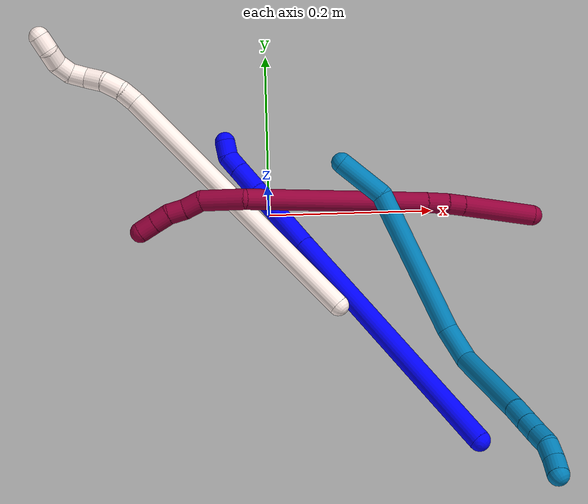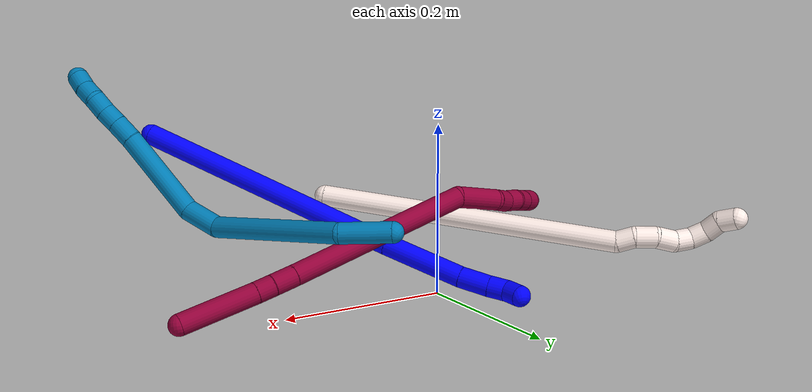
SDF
<sdf version="1.7">
 <world name="default">
  <model name="bin">
   <static>1</static>
   <link name="bottom">
    <collision name="collision-bottom">
     <pose>0 0 -0.01 0 -0 0</pose>
     <geometry><box><size>0.8 0.6 0.02</size></box></geometry>
     <surface>
      <friction><ode><mu>100</mu><mu2>100</mu2></ode></friction>
      <contact><collide_bitmask>65535</collide_bitmask></contact>
     </surface>
    </collision>
   </link>
   <link name="west_wall">
    <collision name="collision-west_wall">
     <pose>-0.41 0 0.1 0 -0 0</pose>
     <geometry><box><size>0.02 0.6 0.2</size></box></geometry>
     <surface>
      <friction><ode><mu>100</mu><mu2>100</mu2></ode></friction>
      <contact><collide_bitmask>65535</collide_bitmask></contact>
     </surface>
    </collision>
   </link>
   <link name="east_wall">
    <collision name="collision-east_wall">
     <pose>0.41 0 0.1 0 -0 0</pose>
     <geometry><box><size>0.02 0.6 0.2</size></box></geometry>
     <surface>
      <friction><ode><mu>100</mu><mu2>100</mu2></ode></friction>
      <contact><collide_bitmask>65535</collide_bitmask></contact>
     </surface>
    </collision>
   </link>
   <link name="south_wall">
    <collision name="collision-south_wall">
     <pose>0 -0.31 0.1 0 -0 0</pose>
     <geometry><box><size>0.8 0.02 0.2</size></box></geometry>
     <surface>
      <friction><ode><mu>100</mu><mu2>100</mu2></ode></friction>
      <contact><collide_bitmask>65535</collide_bitmask></contact>
     </surface>
    </collision>
   </link>
   <link name="north_wall">
    <collision name="collision-north_wall">
     <pose>0 0.31 0.1 0 -0 0</pose>
     <geometry><box><size>0.8 0.02 0.2</size></box></geometry>
     <surface>
      <friction><ode><mu>100</mu><mu2>100</mu2></ode></friction>
      <contact><collide_bitmask>65535</collide_bitmask></contact>
     </surface>
    </collision>
   </link>
  </model>
  <model name="1">
   <static>0</static>
   <link name="1">
    <collision name="collision-cylinder-e_1_1_4">
     <pose>-0.069085 0.102384 -0.106049 -2.37377 -0.438271 1.00773</pose>
     <geometry><cylinder><radius>0.0125</radius><length>0.325587</length></cylinder></geometry>
     <surface>
      <friction><ode><mu>1.16</mu><mu2>1.16</mu2><slip1>0</slip1><slip2>0</slip2></ode></friction>
      <contact><ode><kp>1e+06</kp><kd>1</kd><max_vel>0</max_vel><min_depth>0.001</min_depth></ode></contact>
     </surface>
    </collision>
    <visual name="visual-cylinder-e_1_1_4">
     <pose>-0.069085 0.102384 -0.106049 -2.37377 -0.438271 1.00773</pose>
     <geometry><cylinder><radius>0.0125</radius><length>0.325587</length></cylinder></geometry>
     <material><ambient>0 0 1 1</ambient></material>
    </visual>
    <collision name="collision-cylinder-e_2_4_5">
     <pose>-0.157793 0.236407 -0.243176 -2.34729 -0.416544 0.933452</pose>
     <geometry><cylinder><radius>0.0125</radius><length>0.096993</length></cylinder></geometry>
     <surface>
      <friction><ode><mu>1.16</mu><mu2>1.16</mu2><slip1>0</slip1><slip2>0</slip2></ode></friction>
      <contact><ode><kp>1e+06</kp><kd>1</kd><max_vel>0</max_vel><min_depth>0.001</min_depth></ode></contact>
     </surface>
    </collision>
    <visual name="visual-cylinder-e_2_4_5">
     <pose>-0.157793 0.236407 -0.243176 -2.34729 -0.416544 0.933452</pose>
     <geometry><cylinder><radius>0.0125</radius><length>0.096993</length></cylinder></geometry>
     <material><ambient>0 0 1 1</ambient></material>
    </visual>
    <collision name="collision-cylinder-e_3_5_6">
     <pose>-0.184173 0.280966 -0.284482 -2.24031 -0.389235 0.773714</pose>
     <geometry><cylinder><radius>0.0125</radius><length>0.035621</length></cylinder></geometry>
     <surface>
      <friction><ode><mu>1.16</mu><mu2>1.16</mu2><slip1>0</slip1><slip2>0</slip2></ode></friction>
      <contact><ode><kp>1e+06</kp><kd>1</kd><max_vel>0</max_vel><min_depth>0.001</min_depth></ode></contact>
     </surface>
    </collision>
    <visual name="visual-cylinder-e_3_5_6">
     <pose>-0.184173 0.280966 -0.284482 -2.24031 -0.389235 0.773714</pose>
     <geometry><cylinder><radius>0.0125</radius><length>0.035621</length></cylinder></geometry>
     <material><ambient>0 0 1 1</ambient></material>
    </visual>
    <collision name="collision-cylinder-e_4_6_7">
     <pose>-0.194814 0.302154 -0.300499 -2.18177 -0.367187 0.685339</pose>
     <geometry><cylinder><radius>0.0125</radius><length>0.021628</length></cylinder></geometry>
     <surface>
      <friction><ode><mu>1.16</mu><mu2>1.16</mu2><slip1>0</slip1><slip2>0</slip2></ode></friction>
      <contact><ode><kp>1e+06</kp><kd>1</kd><max_vel>0</max_vel><min_depth>0.001</min_depth></ode></contact>
     </surface>
    </collision>
    <visual name="visual-cylinder-e_4_6_7">
     <pose>-0.194814 0.302154 -0.300499 -2.18177 -0.367187 0.685339</pose>
     <geometry><cylinder><radius>0.0125</radius><length>0.021628</length></cylinder></geometry>
     <material><ambient>0 0 1 1</ambient></material>
    </visual>
    <collision name="collision-cylinder-e_5_7_2">
     <pose>-0.197733 0.317568 -0.31334 -2.34949 0.095664 -0.227964</pose>
     <geometry><cylinder><radius>0.0125</radius><length>0.020171</length></cylinder></geometry>
     <surface>
      <friction><ode><mu>1.16</mu><mu2>1.16</mu2><slip1>0</slip1><slip2>0</slip2></ode></friction>
      <contact><ode><kp>1e+06</kp><kd>1</kd><max_vel>0</max_vel><min_depth>0.001</min_depth></ode></contact>
     </surface>
    </collision>
    <visual name="visual-cylinder-e_5_7_2">
     <pose>-0.197733 0.317568 -0.31334 -2.34949 0.095664 -0.227964</pose>
     <geometry><cylinder><radius>0.0125</radius><length>0.020171</length></cylinder></geometry>
     <material><ambient>0 0 1 1</ambient></material>
    </visual>
    <collision name="collision-sphere-2">
     <pose>-0.196769 0.324714 -0.320392 0 -0 0</pose>
     <geometry><sphere><radius>0.0125</radius></sphere></geometry>
     <surface>
      <friction><ode><mu>1.16</mu><mu2>1.16</mu2><slip1>0</slip1><slip2>0</slip2></ode></friction>
      <contact><ode><kp>1e+06</kp><kd>1</kd><max_vel>0</max_vel><min_depth>0.001</min_depth></ode></contact>
     </surface>
    </collision>
    <visual name="visual-sphere-2">
     <pose>-0.196769 0.324714 -0.320392 0 -0 0</pose>
     <geometry><sphere><radius>0.0125</radius></sphere></geometry>
     <material><ambient>0 0 1 1</ambient></material>
    </visual>
    <collision name="collision-sphere-7">
     <pose>-0.198696 0.310421 -0.306289 0 -0 0</pose>
     <geometry><sphere><radius>0.0125</radius></sphere></geometry>
     <surface>
      <friction><ode><mu>1.16</mu><mu2>1.16</mu2><slip1>0</slip1><slip2>0</slip2></ode></friction>
      <contact><ode><kp>1e+06</kp><kd>1</kd><max_vel>0</max_vel><min_depth>0.001</min_depth></ode></contact>
     </surface>
    </collision>
    <visual name="visual-sphere-7">
     <pose>-0.198696 0.310421 -0.306289 0 -0 0</pose>
     <geometry><sphere><radius>0.0125</radius></sphere></geometry>
     <material><ambient>0 0 1 1</ambient></material>
    </visual>
    <collision name="collision-sphere-6">
     <pose>-0.190932 0.293887 -0.294709 0 -0 0</pose>
     <geometry><sphere><radius>0.0125</radius></sphere></geometry>
     <surface>
      <friction><ode><mu>1.16</mu><mu2>1.16</mu2><slip1>0</slip1><slip2>0</slip2></ode></friction>
      <contact><ode><kp>1e+06</kp><kd>1</kd><max_vel>0</max_vel><min_depth>0.001</min_depth></ode></contact>
     </surface>
    </collision>
    <visual name="visual-sphere-6">
     <pose>-0.190932 0.293887 -0.294709 0 -0 0</pose>
     <geometry><sphere><radius>0.0125</radius></sphere></geometry>
     <material><ambient>0 0 1 1</ambient></material>
    </visual>
    <collision name="collision-sphere-5">
     <pose>-0.177414 0.268045 -0.274256 0 -0 0</pose>
     <geometry><sphere><radius>0.0125</radius></sphere></geometry>
     <surface>
      <friction><ode><mu>1.16</mu><mu2>1.16</mu2><slip1>0</slip1><slip2>0</slip2></ode></friction>
      <contact><ode><kp>1e+06</kp><kd>1</kd><max_vel>0</max_vel><min_depth>0.001</min_depth></ode></contact>
     </surface>
    </collision>
    <visual name="visual-sphere-5">
     <pose>-0.177414 0.268045 -0.274256 0 -0 0</pose>
     <geometry><sphere><radius>0.0125</radius></sphere></geometry>
     <material><ambient>0 0 1 1</ambient></material>
    </visual>
    <collision name="collision-sphere-1">
     <geometry><sphere><radius>0.0125</radius></sphere></geometry>
     <surface>
      <friction><ode><mu>1.16</mu><mu2>1.16</mu2><slip1>0</slip1><slip2>0</slip2></ode></friction>
      <contact><ode><kp>1e+06</kp><kd>1</kd><max_vel>0</max_vel><min_depth>0.001</min_depth></ode></contact>
     </surface>
    </collision>
    <visual name="visual-sphere-1">
     <geometry><sphere><radius>0.0125</radius></sphere></geometry>
     <material><ambient>0 0 1 1</ambient></material>
    </visual>
    <collision name="collision-sphere-4">
     <pose>-0.138171 0.204769 -0.212097 0 -0 0</pose>
     <geometry><sphere><radius>0.0125</radius></sphere></geometry>
     <surface>
      <friction><ode><mu>1.16</mu><mu2>1.16</mu2><slip1>0</slip1><slip2>0</slip2></ode></friction>
      <contact><ode><kp>1e+06</kp><kd>1</kd><max_vel>0</max_vel><min_depth>0.001</min_depth></ode></contact>
     </surface>
    </collision>
    <visual name="visual-sphere-4">
     <pose>-0.138171 0.204769 -0.212097 0 -0 0</pose>
     <geometry><sphere><radius>0.0125</radius></sphere></geometry>
     <material><ambient>0 0 1 1</ambient></material>
    </visual>
    <inertial>
     <pose>-0.105121 0.158428 -0.162135 0 -0 0</pose>
     <mass>0.5</mass>
     <inertia>
      <ixx>0.003705</ixx>
      <ixy>0</ixy>
      <ixz>0</ixz>
      <iyy>0.001893</iyy>
      <iyz>0</iyz>
      <izz>-0.000639</izz>
     </inertia>
    </inertial>
   </link>
   <pose>0.228961 -0.288502 0.164075 0.627675 -0.486212 0.333135</pose>
  </model>
  <model name="8">
   <static>0</static>
   <link name="8">
    <collision name="collision-cylinder-e_1_1_4">
     <pose>-0.043607 -0.009297 -0.009969 2.39106 -1.26781 -2.15771</pose>
     <geometry><cylinder><radius>0.0125</radius><length>0.091375</length></cylinder></geometry>
     <surface>
      <friction><ode><mu>1.16</mu><mu2>1.16</mu2><slip1>0</slip1><slip2>0</slip2></ode></friction>
      <contact><ode><kp>1e+06</kp><kd>1</kd><max_vel>0</max_vel><min_depth>0.001</min_depth></ode></contact>
     </surface>
    </collision>
    <visual name="visual-cylinder-e_1_1_4">
     <pose>-0.043607 -0.009297 -0.009969 2.39106 -1.26781 -2.15771</pose>
     <geometry><cylinder><radius>0.0125</radius><length>0.091375</length></cylinder></geometry>
     <material><ambient>0.584314 0 0.227451 1</ambient></material>
    </visual>
    <collision name="collision-cylinder-e_2_4_5">
     <pose>-0.097062 -0.020546 -0.022447 2.48048 -1.25866 -2.26074</pose>
     <geometry><cylinder><radius>0.0125</radius><length>0.020698</length></cylinder></geometry>
     <surface>
      <friction><ode><mu>1.16</mu><mu2>1.16</mu2><slip1>0</slip1><slip2>0</slip2></ode></friction>
      <contact><ode><kp>1e+06</kp><kd>1</kd><max_vel>0</max_vel><min_depth>0.001</min_depth></ode></contact>
     </surface>
    </collision>
    <visual name="visual-cylinder-e_2_4_5">
     <pose>-0.097062 -0.020546 -0.022447 2.48048 -1.25866 -2.26074</pose>
     <geometry><cylinder><radius>0.0125</radius><length>0.020698</length></cylinder></geometry>
     <material><ambient>0.584314 0 0.227451 1</ambient></material>
    </visual>
    <collision name="collision-cylinder-e_3_5_6">
     <pose>-0.119941 -0.024111 -0.028128 2.671 -1.30415 -2.53309</pose>
     <geometry><cylinder><radius>0.0125</radius><length>0.027015</length></cylinder></geometry>
     <surface>
      <friction><ode><mu>1.16</mu><mu2>1.16</mu2><slip1>0</slip1><slip2>0</slip2></ode></friction>
      <contact><ode><kp>1e+06</kp><kd>1</kd><max_vel>0</max_vel><min_depth>0.001</min_depth></ode></contact>
     </surface>
    </collision>
    <visual name="visual-cylinder-e_3_5_6">
     <pose>-0.119941 -0.024111 -0.028128 2.671 -1.30415 -2.53309</pose>
     <geometry><cylinder><radius>0.0125</radius><length>0.027015</length></cylinder></geometry>
     <material><ambient>0.584314 0 0.227451 1</ambient></material>
    </visual>
    <collision name="collision-cylinder-e_4_6_7">
     <pose>-0.241595 -0.036149 -0.05955 2.78808 -1.30038 -2.68021</pose>
     <geometry><cylinder><radius>0.0125</radius><length>0.225442</length></cylinder></geometry>
     <surface>
      <friction><ode><mu>1.16</mu><mu2>1.16</mu2><slip1>0</slip1><slip2>0</slip2></ode></friction>
      <contact><ode><kp>1e+06</kp><kd>1</kd><max_vel>0</max_vel><min_depth>0.001</min_depth></ode></contact>
     </surface>
    </collision>
    <visual name="visual-cylinder-e_4_6_7">
     <pose>-0.241595 -0.036149 -0.05955 2.78808 -1.30038 -2.68021</pose>
     <geometry><cylinder><radius>0.0125</radius><length>0.225442</length></cylinder></geometry>
     <material><ambient>0.584314 0 0.227451 1</ambient></material>
    </visual>
    <collision name="collision-cylinder-e_5_7_8">
     <pose>-0.376093 -0.046797 -0.082447 0.041767 -1.36663 -0.034006</pose>
     <geometry><cylinder><radius>0.0125</radius><length>0.052844</length></cylinder></geometry>
     <surface>
      <friction><ode><mu>1.16</mu><mu2>1.16</mu2><slip1>0</slip1><slip2>0</slip2></ode></friction>
      <contact><ode><kp>1e+06</kp><kd>1</kd><max_vel>0</max_vel><min_depth>0.001</min_depth></ode></contact>
     </surface>
    </collision>
    <visual name="visual-cylinder-e_5_7_8">
     <pose>-0.376093 -0.046797 -0.082447 0.041767 -1.36663 -0.034006</pose>
     <geometry><cylinder><radius>0.0125</radius><length>0.052844</length></cylinder></geometry>
     <material><ambient>0.584314 0 0.227451 1</ambient></material>
    </visual>
    <collision name="collision-cylinder-e_6_8_9">
     <pose>-0.41182 -0.042466 -0.075205 -1.17762 -1.10675 0.782579</pose>
     <geometry><cylinder><radius>0.0125</radius><length>0.022037</length></cylinder></geometry>
     <surface>
      <friction><ode><mu>1.16</mu><mu2>1.16</mu2><slip1>0</slip1><slip2>0</slip2></ode></friction>
      <contact><ode><kp>1e+06</kp><kd>1</kd><max_vel>0</max_vel><min_depth>0.001</min_depth></ode></contact>
     </surface>
    </collision>
    <visual name="visual-cylinder-e_6_8_9">
     <pose>-0.41182 -0.042466 -0.075205 -1.17762 -1.10675 0.782579</pose>
     <geometry><cylinder><radius>0.0125</radius><length>0.022037</length></cylinder></geometry>
     <material><ambient>0.584314 0 0.227451 1</ambient></material>
    </visual>
    <collision name="collision-cylinder-e_7_9_10">
     <pose>-0.431414 -0.035466 -0.072653 -1.30607 -1.31641 1.06833</pose>
     <geometry><cylinder><radius>0.0125</radius><length>0.020129</length></cylinder></geometry>
     <surface>
      <friction><ode><mu>1.16</mu><mu2>1.16</mu2><slip1>0</slip1><slip2>0</slip2></ode></friction>
      <contact><ode><kp>1e+06</kp><kd>1</kd><max_vel>0</max_vel><min_depth>0.001</min_depth></ode></contact>
     </surface>
    </collision>
    <visual name="visual-cylinder-e_7_9_10">
     <pose>-0.431414 -0.035466 -0.072653 -1.30607 -1.31641 1.06833</pose>
     <geometry><cylinder><radius>0.0125</radius><length>0.020129</length></cylinder></geometry>
     <material><ambient>0.584314 0 0.227451 1</ambient></material>
    </visual>
    <collision name="collision-cylinder-e_8_10_11">
     <pose>-0.44992 -0.028153 -0.070629 -1.29812 -1.04766 0.826127</pose>
     <geometry><cylinder><radius>0.0125</radius><length>0.020237</length></cylinder></geometry>
     <surface>
      <friction><ode><mu>1.16</mu><mu2>1.16</mu2><slip1>0</slip1><slip2>0</slip2></ode></friction>
      <contact><ode><kp>1e+06</kp><kd>1</kd><max_vel>0</max_vel><min_depth>0.001</min_depth></ode></contact>
     </surface>
    </collision>
    <visual name="visual-cylinder-e_8_10_11">
     <pose>-0.44992 -0.028153 -0.070629 -1.29812 -1.04766 0.826127</pose>
     <geometry><cylinder><radius>0.0125</radius><length>0.020237</length></cylinder></geometry>
     <material><ambient>0.584314 0 0.227451 1</ambient></material>
    </visual>
    <collision name="collision-cylinder-e_9_11_2">
     <pose>-0.467439 -0.018299 -0.068398 -1.39806 -1.04659 0.903154</pose>
     <geometry><cylinder><radius>0.0125</radius><length>0.020223</length></cylinder></geometry>
     <surface>
      <friction><ode><mu>1.16</mu><mu2>1.16</mu2><slip1>0</slip1><slip2>0</slip2></ode></friction>
      <contact><ode><kp>1e+06</kp><kd>1</kd><max_vel>0</max_vel><min_depth>0.001</min_depth></ode></contact>
     </surface>
    </collision>
    <visual name="visual-cylinder-e_9_11_2">
     <pose>-0.467439 -0.018299 -0.068398 -1.39806 -1.04659 0.903154</pose>
     <geometry><cylinder><radius>0.0125</radius><length>0.020223</length></cylinder></geometry>
     <material><ambient>0.584314 0 0.227451 1</ambient></material>
    </visual>
    <collision name="collision-sphere-2">
     <pose>-0.476192 -0.013313 -0.067528 0 -0 0</pose>
     <geometry><sphere><radius>0.0125</radius></sphere></geometry>
     <surface>
      <friction><ode><mu>1.16</mu><mu2>1.16</mu2><slip1>0</slip1><slip2>0</slip2></ode></friction>
      <contact><ode><kp>1e+06</kp><kd>1</kd><max_vel>0</max_vel><min_depth>0.001</min_depth></ode></contact>
     </surface>
    </collision>
    <visual name="visual-sphere-2">
     <pose>-0.476192 -0.013313 -0.067528 0 -0 0</pose>
     <geometry><sphere><radius>0.0125</radius></sphere></geometry>
     <material><ambient>0.584314 0 0.227451 1</ambient></material>
    </visual>
    <collision name="collision-sphere-11">
     <pose>-0.458685 -0.023285 -0.069268 0 -0 0</pose>
     <geometry><sphere><radius>0.0125</radius></sphere></geometry>
     <surface>
      <friction><ode><mu>1.16</mu><mu2>1.16</mu2><slip1>0</slip1><slip2>0</slip2></ode></friction>
      <contact><ode><kp>1e+06</kp><kd>1</kd><max_vel>0</max_vel><min_depth>0.001</min_depth></ode></contact>
     </surface>
    </collision>
    <visual name="visual-sphere-11">
     <pose>-0.458685 -0.023285 -0.069268 0 -0 0</pose>
     <geometry><sphere><radius>0.0125</radius></sphere></geometry>
     <material><ambient>0.584314 0 0.227451 1</ambient></material>
    </visual>
    <collision name="collision-sphere-10">
     <pose>-0.441155 -0.033022 -0.07199 0 -0 0</pose>
     <geometry><sphere><radius>0.0125</radius></sphere></geometry>
     <surface>
      <friction><ode><mu>1.16</mu><mu2>1.16</mu2><slip1>0</slip1><slip2>0</slip2></ode></friction>
      <contact><ode><kp>1e+06</kp><kd>1</kd><max_vel>0</max_vel><min_depth>0.001</min_depth></ode></contact>
     </surface>
    </collision>
    <visual name="visual-sphere-10">
     <pose>-0.441155 -0.033022 -0.07199 0 -0 0</pose>
     <geometry><sphere><radius>0.0125</radius></sphere></geometry>
     <material><ambient>0.584314 0 0.227451 1</ambient></material>
    </visual>
    <collision name="collision-sphere-9">
     <pose>-0.421673 -0.037911 -0.073316 0 -0 0</pose>
     <geometry><sphere><radius>0.0125</radius></sphere></geometry>
     <surface>
      <friction><ode><mu>1.16</mu><mu2>1.16</mu2><slip1>0</slip1><slip2>0</slip2></ode></friction>
      <contact><ode><kp>1e+06</kp><kd>1</kd><max_vel>0</max_vel><min_depth>0.001</min_depth></ode></contact>
     </surface>
    </collision>
    <visual name="visual-sphere-9">
     <pose>-0.421673 -0.037911 -0.073316 0 -0 0</pose>
     <geometry><sphere><radius>0.0125</radius></sphere></geometry>
     <material><ambient>0.584314 0 0.227451 1</ambient></material>
    </visual>
    <collision name="collision-sphere-4">
     <pose>-0.087213 -0.018594 -0.019938 0 -0 0</pose>
     <geometry><sphere><radius>0.0125</radius></sphere></geometry>
     <surface>
      <friction><ode><mu>1.16</mu><mu2>1.16</mu2><slip1>0</slip1><slip2>0</slip2></ode></friction>
      <contact><ode><kp>1e+06</kp><kd>1</kd><max_vel>0</max_vel><min_depth>0.001</min_depth></ode></contact>
     </surface>
    </collision>
    <visual name="visual-sphere-4">
     <pose>-0.087213 -0.018594 -0.019938 0 -0 0</pose>
     <geometry><sphere><radius>0.0125</radius></sphere></geometry>
     <material><ambient>0.584314 0 0.227451 1</ambient></material>
    </visual>
    <collision name="collision-sphere-1">
     <geometry><sphere><radius>0.0125</radius></sphere></geometry>
     <surface>
      <friction><ode><mu>1.16</mu><mu2>1.16</mu2><slip1>0</slip1><slip2>0</slip2></ode></friction>
      <contact><ode><kp>1e+06</kp><kd>1</kd><max_vel>0</max_vel><min_depth>0.001</min_depth></ode></contact>
     </surface>
    </collision>
    <visual name="visual-sphere-1">
     <geometry><sphere><radius>0.0125</radius></sphere></geometry>
     <material><ambient>0.584314 0 0.227451 1</ambient></material>
    </visual>
    <collision name="collision-sphere-8">
     <pose>-0.401966 -0.047021 -0.077095 0 -0 0</pose>
     <geometry><sphere><radius>0.0125</radius></sphere></geometry>
     <surface>
      <friction><ode><mu>1.16</mu><mu2>1.16</mu2><slip1>0</slip1><slip2>0</slip2></ode></friction>
      <contact><ode><kp>1e+06</kp><kd>1</kd><max_vel>0</max_vel><min_depth>0.001</min_depth></ode></contact>
     </surface>
    </collision>
    <visual name="visual-sphere-8">
     <pose>-0.401966 -0.047021 -0.077095 0 -0 0</pose>
     <geometry><sphere><radius>0.0125</radius></sphere></geometry>
     <material><ambient>0.584314 0 0.227451 1</ambient></material>
    </visual>
    <collision name="collision-sphere-5">
     <pose>-0.106911 -0.022497 -0.024955 0 -0 0</pose>
     <geometry><sphere><radius>0.0125</radius></sphere></geometry>
     <surface>
      <friction><ode><mu>1.16</mu><mu2>1.16</mu2><slip1>0</slip1><slip2>0</slip2></ode></friction>
      <contact><ode><kp>1e+06</kp><kd>1</kd><max_vel>0</max_vel><min_depth>0.001</min_depth></ode></contact>
     </surface>
    </collision>
    <visual name="visual-sphere-5">
     <pose>-0.106911 -0.022497 -0.024955 0 -0 0</pose>
     <geometry><sphere><radius>0.0125</radius></sphere></geometry>
     <material><ambient>0.584314 0 0.227451 1</ambient></material>
    </visual>
    <collision name="collision-sphere-6">
     <pose>-0.132971 -0.025725 -0.0313 0 -0 0</pose>
     <geometry><sphere><radius>0.0125</radius></sphere></geometry>
     <surface>
      <friction><ode><mu>1.16</mu><mu2>1.16</mu2><slip1>0</slip1><slip2>0</slip2></ode></friction>
      <contact><ode><kp>1e+06</kp><kd>1</kd><max_vel>0</max_vel><min_depth>0.001</min_depth></ode></contact>
     </surface>
    </collision>
    <visual name="visual-sphere-6">
     <pose>-0.132971 -0.025725 -0.0313 0 -0 0</pose>
     <geometry><sphere><radius>0.0125</radius></sphere></geometry>
     <material><ambient>0.584314 0 0.227451 1</ambient></material>
    </visual>
    <collision name="collision-sphere-7">
     <pose>-0.35022 -0.046574 -0.0878 0 -0 0</pose>
     <geometry><sphere><radius>0.0125</radius></sphere></geometry>
     <surface>
      <friction><ode><mu>1.16</mu><mu2>1.16</mu2><slip1>0</slip1><slip2>0</slip2></ode></friction>
      <contact><ode><kp>1e+06</kp><kd>1</kd><max_vel>0</max_vel><min_depth>0.001</min_depth></ode></contact>
     </surface>
    </collision>
    <visual name="visual-sphere-7">
     <pose>-0.35022 -0.046574 -0.0878 0 -0 0</pose>
     <geometry><sphere><radius>0.0125</radius></sphere></geometry>
     <material><ambient>0.584314 0 0.227451 1</ambient></material>
    </visual>
    <inertial>
     <pose>-0.239782 -0.030276 -0.051699 0 -0 0</pose>
     <mass>0.5</mass>
     <inertia>
      <ixx>-0.000405</ixx>
      <ixy>0</ixy>
      <ixz>0</ixz>
      <iyy>0.000909</iyy>
      <iyz>0</iyz>
      <izz>0.001112</izz>
     </inertia>
    </inertial>
   </link>
   <pose>0.322599 -0.011225 0.012493 -2.90234 0.010213 0.033938</pose>
  </model>
  <model name="9">
   <static>0</static>
   <link name="9">
    <collision name="collision-cylinder-e_1_1_4">
     <pose>0.015047 -0.003715 0.026161 0.141061 0.517659 0.037406</pose>
     <geometry><cylinder><radius>0.0125</radius><length>0.060814</length></cylinder></geometry>
     <surface>
      <friction><ode><mu>1.16</mu><mu2>1.16</mu2><slip1>0</slip1><slip2>0</slip2></ode></friction>
      <contact><ode><kp>1e+06</kp><kd>1</kd><max_vel>0</max_vel><min_depth>0.001</min_depth></ode></contact>
     </surface>
    </collision>
    <visual name="visual-cylinder-e_1_1_4">
     <pose>0.015047 -0.003715 0.026161 0.141061 0.517659 0.037406</pose>
     <geometry><cylinder><radius>0.0125</radius><length>0.060814</length></cylinder></geometry>
     <material><ambient>0 0.490196 0.709804 1</ambient></material>
    </visual>
    <collision name="collision-cylinder-e_2_4_5">
     <pose>0.044713 -0.044356 0.131462 0.436564 0.165864 0.036872</pose>
     <geometry><cylinder><radius>0.0125</radius><length>0.177092</length></cylinder></geometry>
     <surface>
      <friction><ode><mu>1.16</mu><mu2>1.16</mu2><slip1>0</slip1><slip2>0</slip2></ode></friction>
      <contact><ode><kp>1e+06</kp><kd>1</kd><max_vel>0</max_vel><min_depth>0.001</min_depth></ode></contact>
     </surface>
    </collision>
    <visual name="visual-cylinder-e_2_4_5">
     <pose>0.044713 -0.044356 0.131462 0.436564 0.165864 0.036872</pose>
     <geometry><cylinder><radius>0.0125</radius><length>0.177092</length></cylinder></geometry>
     <material><ambient>0 0.490196 0.709804 1</ambient></material>
    </visual>
    <collision name="collision-cylinder-e_3_5_6">
     <pose>0.058628 -0.081796 0.233046 0.022897 -0.031375 -0.000359</pose>
     <geometry><cylinder><radius>0.0125</radius><length>0.044923</length></cylinder></geometry>
     <surface>
      <friction><ode><mu>1.16</mu><mu2>1.16</mu2><slip1>0</slip1><slip2>0</slip2></ode></friction>
      <contact><ode><kp>1e+06</kp><kd>1</kd><max_vel>0</max_vel><min_depth>0.001</min_depth></ode></contact>
     </surface>
    </collision>
    <visual name="visual-cylinder-e_3_5_6">
     <pose>0.058628 -0.081796 0.233046 0.022897 -0.031375 -0.000359</pose>
     <geometry><cylinder><radius>0.0125</radius><length>0.044923</length></cylinder></geometry>
     <material><ambient>0 0.490196 0.709804 1</ambient></material>
    </visual>
    <collision name="collision-cylinder-e_4_6_7">
     <pose>0.047389 -0.060222 0.304232 -0.425482 -0.194372 0.042113</pose>
     <geometry><cylinder><radius>0.0125</radius><length>0.10908</length></cylinder></geometry>
     <surface>
      <friction><ode><mu>1.16</mu><mu2>1.16</mu2><slip1>0</slip1><slip2>0</slip2></ode></friction>
      <contact><ode><kp>1e+06</kp><kd>1</kd><max_vel>0</max_vel><min_depth>0.001</min_depth></ode></contact>
     </surface>
    </collision>
    <visual name="visual-cylinder-e_4_6_7">
     <pose>0.047389 -0.060222 0.304232 -0.425482 -0.194372 0.042113</pose>
     <geometry><cylinder><radius>0.0125</radius><length>0.10908</length></cylinder></geometry>
     <material><ambient>0 0.490196 0.709804 1</ambient></material>
    </visual>
    <collision name="collision-cylinder-e_5_7_8">
     <pose>0.034766 -0.034002 0.36512 -0.327884 -0.161351 0.026748</pose>
     <geometry><cylinder><radius>0.0125</radius><length>0.025996</length></cylinder></geometry>
     <surface>
      <friction><ode><mu>1.16</mu><mu2>1.16</mu2><slip1>0</slip1><slip2>0</slip2></ode></friction>
      <contact><ode><kp>1e+06</kp><kd>1</kd><max_vel>0</max_vel><min_depth>0.001</min_depth></ode></contact>
     </surface>
    </collision>
    <visual name="visual-cylinder-e_5_7_8">
     <pose>0.034766 -0.034002 0.36512 -0.327884 -0.161351 0.026748</pose>
     <geometry><cylinder><radius>0.0125</radius><length>0.025996</length></cylinder></geometry>
     <material><ambient>0 0.490196 0.709804 1</ambient></material>
    </visual>
    <collision name="collision-cylinder-e_6_8_9">
     <pose>0.031249 -0.026745 0.387044 -0.309358 -0.138306 0.021599</pose>
     <geometry><cylinder><radius>0.0125</radius><length>0.02073</length></cylinder></geometry>
     <surface>
      <friction><ode><mu>1.16</mu><mu2>1.16</mu2><slip1>0</slip1><slip2>0</slip2></ode></friction>
      <contact><ode><kp>1e+06</kp><kd>1</kd><max_vel>0</max_vel><min_depth>0.001</min_depth></ode></contact>
     </surface>
    </collision>
    <visual name="visual-cylinder-e_6_8_9">
     <pose>0.031249 -0.026745 0.387044 -0.309358 -0.138306 0.021599</pose>
     <geometry><cylinder><radius>0.0125</radius><length>0.02073</length></cylinder></geometry>
     <material><ambient>0 0.490196 0.709804 1</ambient></material>
    </visual>
    <collision name="collision-cylinder-e_7_9_10">
     <pose>0.027837 -0.019643 0.406411 -0.393208 -0.18878 0.037708</pose>
     <geometry><cylinder><radius>0.0125</radius><length>0.021137</length></cylinder></geometry>
     <surface>
      <friction><ode><mu>1.16</mu><mu2>1.16</mu2><slip1>0</slip1><slip2>0</slip2></ode></friction>
      <contact><ode><kp>1e+06</kp><kd>1</kd><max_vel>0</max_vel><min_depth>0.001</min_depth></ode></contact>
     </surface>
    </collision>
    <visual name="visual-cylinder-e_7_9_10">
     <pose>0.027837 -0.019643 0.406411 -0.393208 -0.18878 0.037708</pose>
     <geometry><cylinder><radius>0.0125</radius><length>0.021137</length></cylinder></geometry>
     <material><ambient>0 0.490196 0.709804 1</ambient></material>
    </visual>
    <collision name="collision-cylinder-e_8_10_11">
     <pose>0.023028 -0.015453 0.425701 -0.021897 -0.283391 0.003124</pose>
     <geometry><cylinder><radius>0.0125</radius><length>0.020213</length></cylinder></geometry>
     <surface>
      <friction><ode><mu>1.16</mu><mu2>1.16</mu2><slip1>0</slip1><slip2>0</slip2></ode></friction>
      <contact><ode><kp>1e+06</kp><kd>1</kd><max_vel>0</max_vel><min_depth>0.001</min_depth></ode></contact>
     </surface>
    </collision>
    <visual name="visual-cylinder-e_8_10_11">
     <pose>0.023028 -0.015453 0.425701 -0.021897 -0.283391 0.003124</pose>
     <geometry><cylinder><radius>0.0125</radius><length>0.020213</length></cylinder></geometry>
     <material><ambient>0 0.490196 0.709804 1</ambient></material>
    </visual>
    <collision name="collision-cylinder-e_9_11_2">
     <pose>0.016129 -0.014533 0.444516 -0.077472 -0.41915 0.016486</pose>
     <geometry><cylinder><radius>0.0125</radius><length>0.020015</length></cylinder></geometry>
     <surface>
      <friction><ode><mu>1.16</mu><mu2>1.16</mu2><slip1>0</slip1><slip2>0</slip2></ode></friction>
      <contact><ode><kp>1e+06</kp><kd>1</kd><max_vel>0</max_vel><min_depth>0.001</min_depth></ode></contact>
     </surface>
    </collision>
    <visual name="visual-cylinder-e_9_11_2">
     <pose>0.016129 -0.014533 0.444516 -0.077472 -0.41915 0.016486</pose>
     <geometry><cylinder><radius>0.0125</radius><length>0.020015</length></cylinder></geometry>
     <material><ambient>0 0.490196 0.709804 1</ambient></material>
    </visual>
    <collision name="collision-sphere-2">
     <pose>0.012056 -0.013825 0.453629 0 -0 0</pose>
     <geometry><sphere><radius>0.0125</radius></sphere></geometry>
     <surface>
      <friction><ode><mu>1.16</mu><mu2>1.16</mu2><slip1>0</slip1><slip2>0</slip2></ode></friction>
      <contact><ode><kp>1e+06</kp><kd>1</kd><max_vel>0</max_vel><min_depth>0.001</min_depth></ode></contact>
     </surface>
    </collision>
    <visual name="visual-sphere-2">
     <pose>0.012056 -0.013825 0.453629 0 -0 0</pose>
     <geometry><sphere><radius>0.0125</radius></sphere></geometry>
     <material><ambient>0 0.490196 0.709804 1</ambient></material>
    </visual>
    <collision name="collision-sphere-11">
     <pose>0.020202 -0.01524 0.435402 0 -0 0</pose>
     <geometry><sphere><radius>0.0125</radius></sphere></geometry>
     <surface>
      <friction><ode><mu>1.16</mu><mu2>1.16</mu2><slip1>0</slip1><slip2>0</slip2></ode></friction>
      <contact><ode><kp>1e+06</kp><kd>1</kd><max_vel>0</max_vel><min_depth>0.001</min_depth></ode></contact>
     </surface>
    </collision>
    <visual name="visual-sphere-11">
     <pose>0.020202 -0.01524 0.435402 0 -0 0</pose>
     <geometry><sphere><radius>0.0125</radius></sphere></geometry>
     <material><ambient>0 0.490196 0.709804 1</ambient></material>
    </visual>
    <collision name="collision-sphere-10">
     <pose>0.025854 -0.015665 0.416 0 -0 0</pose>
     <geometry><sphere><radius>0.0125</radius></sphere></geometry>
     <surface>
      <friction><ode><mu>1.16</mu><mu2>1.16</mu2><slip1>0</slip1><slip2>0</slip2></ode></friction>
      <contact><ode><kp>1e+06</kp><kd>1</kd><max_vel>0</max_vel><min_depth>0.001</min_depth></ode></contact>
     </surface>
    </collision>
    <visual name="visual-sphere-10">
     <pose>0.025854 -0.015665 0.416 0 -0 0</pose>
     <geometry><sphere><radius>0.0125</radius></sphere></geometry>
     <material><ambient>0 0.490196 0.709804 1</ambient></material>
    </visual>
    <collision name="collision-sphere-9">
     <pose>0.02982 -0.02362 0.396823 0 -0 0</pose>
     <geometry><sphere><radius>0.0125</radius></sphere></geometry>
     <surface>
      <friction><ode><mu>1.16</mu><mu2>1.16</mu2><slip1>0</slip1><slip2>0</slip2></ode></friction>
      <contact><ode><kp>1e+06</kp><kd>1</kd><max_vel>0</max_vel><min_depth>0.001</min_depth></ode></contact>
     </surface>
    </collision>
    <visual name="visual-sphere-9">
     <pose>0.02982 -0.02362 0.396823 0 -0 0</pose>
     <geometry><sphere><radius>0.0125</radius></sphere></geometry>
     <material><ambient>0 0.490196 0.709804 1</ambient></material>
    </visual>
    <collision name="collision-sphere-4">
     <pose>0.030094 -0.00743 0.052322 0 -0 0</pose>
     <geometry><sphere><radius>0.0125</radius></sphere></geometry>
     <surface>
      <friction><ode><mu>1.16</mu><mu2>1.16</mu2><slip1>0</slip1><slip2>0</slip2></ode></friction>
      <contact><ode><kp>1e+06</kp><kd>1</kd><max_vel>0</max_vel><min_depth>0.001</min_depth></ode></contact>
     </surface>
    </collision>
    <visual name="visual-sphere-4">
     <pose>0.030094 -0.00743 0.052322 0 -0 0</pose>
     <geometry><sphere><radius>0.0125</radius></sphere></geometry>
     <material><ambient>0 0.490196 0.709804 1</ambient></material>
    </visual>
    <collision name="collision-sphere-1">
     <geometry><sphere><radius>0.0125</radius></sphere></geometry>
     <surface>
      <friction><ode><mu>1.16</mu><mu2>1.16</mu2><slip1>0</slip1><slip2>0</slip2></ode></friction>
      <contact><ode><kp>1e+06</kp><kd>1</kd><max_vel>0</max_vel><min_depth>0.001</min_depth></ode></contact>
     </surface>
    </collision>
    <visual name="visual-sphere-1">
     <geometry><sphere><radius>0.0125</radius></sphere></geometry>
     <material><ambient>0 0.490196 0.709804 1</ambient></material>
    </visual>
    <collision name="collision-sphere-8">
     <pose>0.032678 -0.029871 0.377265 0 -0 0</pose>
     <geometry><sphere><radius>0.0125</radius></sphere></geometry>
     <surface>
      <friction><ode><mu>1.16</mu><mu2>1.16</mu2><slip1>0</slip1><slip2>0</slip2></ode></friction>
      <contact><ode><kp>1e+06</kp><kd>1</kd><max_vel>0</max_vel><min_depth>0.001</min_depth></ode></contact>
     </surface>
    </collision>
    <visual name="visual-sphere-8">
     <pose>0.032678 -0.029871 0.377265 0 -0 0</pose>
     <geometry><sphere><radius>0.0125</radius></sphere></geometry>
     <material><ambient>0 0.490196 0.709804 1</ambient></material>
    </visual>
    <collision name="collision-sphere-5">
     <pose>0.059333 -0.081282 0.210601 0 -0 0</pose>
     <geometry><sphere><radius>0.0125</radius></sphere></geometry>
     <surface>
      <friction><ode><mu>1.16</mu><mu2>1.16</mu2><slip1>0</slip1><slip2>0</slip2></ode></friction>
      <contact><ode><kp>1e+06</kp><kd>1</kd><max_vel>0</max_vel><min_depth>0.001</min_depth></ode></contact>
     </surface>
    </collision>
    <visual name="visual-sphere-5">
     <pose>0.059333 -0.081282 0.210601 0 -0 0</pose>
     <geometry><sphere><radius>0.0125</radius></sphere></geometry>
     <material><ambient>0 0.490196 0.709804 1</ambient></material>
    </visual>
    <collision name="collision-sphere-6">
     <pose>0.057923 -0.08231 0.255491 0 -0 0</pose>
     <geometry><sphere><radius>0.0125</radius></sphere></geometry>
     <surface>
      <friction><ode><mu>1.16</mu><mu2>1.16</mu2><slip1>0</slip1><slip2>0</slip2></ode></friction>
      <contact><ode><kp>1e+06</kp><kd>1</kd><max_vel>0</max_vel><min_depth>0.001</min_depth></ode></contact>
     </surface>
    </collision>
    <visual name="visual-sphere-6">
     <pose>0.057923 -0.08231 0.255491 0 -0 0</pose>
     <geometry><sphere><radius>0.0125</radius></sphere></geometry>
     <material><ambient>0 0.490196 0.709804 1</ambient></material>
    </visual>
    <collision name="collision-sphere-7">
     <pose>0.036855 -0.038134 0.352974 0 -0 0</pose>
     <geometry><sphere><radius>0.0125</radius></sphere></geometry>
     <surface>
      <friction><ode><mu>1.16</mu><mu2>1.16</mu2><slip1>0</slip1><slip2>0</slip2></ode></friction>
      <contact><ode><kp>1e+06</kp><kd>1</kd><max_vel>0</max_vel><min_depth>0.001</min_depth></ode></contact>
     </surface>
    </collision>
    <visual name="visual-sphere-7">
     <pose>0.036855 -0.038134 0.352974 0 -0 0</pose>
     <geometry><sphere><radius>0.0125</radius></sphere></geometry>
     <material><ambient>0 0.490196 0.709804 1</ambient></material>
    </visual>
    <inertial>
     <pose>0.039129 -0.041562 0.224267 0 -0 0</pose>
     <mass>0.5</mass>
     <inertia>
      <ixx>0.000633</ixx>
      <ixy>0</ixy>
      <ixz>0</ixz>
      <iyy>0.000589</iyy>
      <iyz>0</iyz>
      <izz>0.000123</izz>
     </inertia>
    </inertial>
   </link>
   <pose>0.087877 0.044709 0.095267 1.15455 0.545636 0.292844</pose>
  </model>
  <model name="11">
   <static>0</static>
   <link name="11">
    <collision name="collision-cylinder-e_1_1_4">
     <pose>-0.026122 0.00514 0.173349 -0.029645 -0.1495 0.00222</pose>
     <geometry><cylinder><radius>0.0125</radius><length>0.350763</length></cylinder></geometry>
     <surface>
      <friction><ode><mu>1.16</mu><mu2>1.16</mu2><slip1>0</slip1><slip2>0</slip2></ode></friction>
      <contact><ode><kp>1e+06</kp><kd>1</kd><max_vel>0</max_vel><min_depth>0.001</min_depth></ode></contact>
     </surface>
    </collision>
    <visual name="visual-cylinder-e_1_1_4">
     <pose>-0.026122 0.00514 0.173349 -0.029645 -0.1495 0.00222</pose>
     <geometry><cylinder><radius>0.0125</radius><length>0.350763</length></cylinder></geometry>
     <material><ambient>1 0.933333 0.909804 1</ambient></material>
    </visual>
    <collision name="collision-cylinder-e_2_4_5">
     <pose>-0.057363 0.01269 0.355544 -0.265908 -0.509243 0.069591</pose>
     <geometry><cylinder><radius>0.0125</radius><length>0.021001</length></cylinder></geometry>
     <surface>
      <friction><ode><mu>1.16</mu><mu2>1.16</mu2><slip1>0</slip1><slip2>0</slip2></ode></friction>
      <contact><ode><kp>1e+06</kp><kd>1</kd><max_vel>0</max_vel><min_depth>0.001</min_depth></ode></contact>
     </surface>
    </collision>
    <visual name="visual-cylinder-e_2_4_5">
     <pose>-0.057363 0.01269 0.355544 -0.265908 -0.509243 0.069591</pose>
     <geometry><cylinder><radius>0.0125</radius><length>0.021001</length></cylinder></geometry>
     <material><ambient>1 0.933333 0.909804 1</ambient></material>
    </visual>
    <collision name="collision-cylinder-e_3_5_6">
     <pose>-0.06431 0.01948 0.375904 -0.363556 -0.147252 0.027113</pose>
     <geometry><cylinder><radius>0.0125</radius><length>0.024908</length></cylinder></geometry>
     <surface>
      <friction><ode><mu>1.16</mu><mu2>1.16</mu2><slip1>0</slip1><slip2>0</slip2></ode></friction>
      <contact><ode><kp>1e+06</kp><kd>1</kd><max_vel>0</max_vel><min_depth>0.001</min_depth></ode></contact>
     </surface>
    </collision>
    <visual name="visual-cylinder-e_3_5_6">
     <pose>-0.06431 0.01948 0.375904 -0.363556 -0.147252 0.027113</pose>
     <geometry><cylinder><radius>0.0125</radius><length>0.024908</length></cylinder></geometry>
     <material><ambient>1 0.933333 0.909804 1</ambient></material>
    </visual>
    <collision name="collision-cylinder-e_4_6_7">
     <pose>-0.064558 0.02914 0.397549 -0.480419 0.137299 -0.03368</pose>
     <geometry><cylinder><radius>0.0125</radius><length>0.023066</length></cylinder></geometry>
     <surface>
      <friction><ode><mu>1.16</mu><mu2>1.16</mu2><slip1>0</slip1><slip2>0</slip2></ode></friction>
      <contact><ode><kp>1e+06</kp><kd>1</kd><max_vel>0</max_vel><min_depth>0.001</min_depth></ode></contact>
     </surface>
    </collision>
    <visual name="visual-cylinder-e_4_6_7">
     <pose>-0.064558 0.02914 0.397549 -0.480419 0.137299 -0.03368</pose>
     <geometry><cylinder><radius>0.0125</radius><length>0.023066</length></cylinder></geometry>
     <material><ambient>1 0.933333 0.909804 1</ambient></material>
    </visual>
    <collision name="collision-cylinder-e_5_7_8">
     <pose>-0.065023 0.040167 0.415644 -0.625105 -0.205115 0.06649</pose>
     <geometry><cylinder><radius>0.0125</radius><length>0.020061</length></cylinder></geometry>
     <surface>
      <friction><ode><mu>1.16</mu><mu2>1.16</mu2><slip1>0</slip1><slip2>0</slip2></ode></friction>
      <contact><ode><kp>1e+06</kp><kd>1</kd><max_vel>0</max_vel><min_depth>0.001</min_depth></ode></contact>
     </surface>
    </collision>
    <visual name="visual-cylinder-e_5_7_8">
     <pose>-0.065023 0.040167 0.415644 -0.625105 -0.205115 0.06649</pose>
     <geometry><cylinder><radius>0.0125</radius><length>0.020061</length></cylinder></geometry>
     <material><ambient>1 0.933333 0.909804 1</ambient></material>
    </visual>
    <collision name="collision-cylinder-e_6_8_9">
     <pose>-0.07289 0.04908 0.43116 -0.397003 -0.618169 0.128286</pose>
     <geometry><cylinder><radius>0.0125</radius><length>0.0201</length></cylinder></geometry>
     <surface>
      <friction><ode><mu>1.16</mu><mu2>1.16</mu2><slip1>0</slip1><slip2>0</slip2></ode></friction>
      <contact><ode><kp>1e+06</kp><kd>1</kd><max_vel>0</max_vel><min_depth>0.001</min_depth></ode></contact>
     </surface>
    </collision>
    <visual name="visual-cylinder-e_6_8_9">
     <pose>-0.07289 0.04908 0.43116 -0.397003 -0.618169 0.128286</pose>
     <geometry><cylinder><radius>0.0125</radius><length>0.0201</length></cylinder></geometry>
     <material><ambient>1 0.933333 0.909804 1</ambient></material>
    </visual>
    <collision name="collision-cylinder-e_7_9_10">
     <pose>-0.087022 0.052495 0.444299 -0.044349 -0.978367 0.023611</pose>
     <geometry><cylinder><radius>0.0125</radius><length>0.020029</length></cylinder></geometry>
     <surface>
      <friction><ode><mu>1.16</mu><mu2>1.16</mu2><slip1>0</slip1><slip2>0</slip2></ode></friction>
      <contact><ode><kp>1e+06</kp><kd>1</kd><max_vel>0</max_vel><min_depth>0.001</min_depth></ode></contact>
     </surface>
    </collision>
    <visual name="visual-cylinder-e_7_9_10">
     <pose>-0.087022 0.052495 0.444299 -0.044349 -0.978367 0.023611</pose>
     <geometry><cylinder><radius>0.0125</radius><length>0.020029</length></cylinder></geometry>
     <material><ambient>1 0.933333 0.909804 1</ambient></material>
    </visual>
    <collision name="collision-cylinder-e_8_10_2">
     <pose>-0.100489 0.051971 0.45846 0.089736 -0.539848 -0.024843</pose>
     <geometry><cylinder><radius>0.0125</radius><length>0.020072</length></cylinder></geometry>
     <surface>
      <friction><ode><mu>1.16</mu><mu2>1.16</mu2><slip1>0</slip1><slip2>0</slip2></ode></friction>
      <contact><ode><kp>1e+06</kp><kd>1</kd><max_vel>0</max_vel><min_depth>0.001</min_depth></ode></contact>
     </surface>
    </collision>
    <visual name="visual-cylinder-e_8_10_2">
     <pose>-0.100489 0.051971 0.45846 0.089736 -0.539848 -0.024843</pose>
     <geometry><cylinder><radius>0.0125</radius><length>0.020072</length></cylinder></geometry>
     <material><ambient>1 0.933333 0.909804 1</ambient></material>
    </visual>
    <collision name="collision-sphere-2">
     <pose>-0.105647 0.0512 0.467034 0 -0 0</pose>
     <geometry><sphere><radius>0.0125</radius></sphere></geometry>
     <surface>
      <friction><ode><mu>1.16</mu><mu2>1.16</mu2><slip1>0</slip1><slip2>0</slip2></ode></friction>
      <contact><ode><kp>1e+06</kp><kd>1</kd><max_vel>0</max_vel><min_depth>0.001</min_depth></ode></contact>
     </surface>
    </collision>
    <visual name="visual-sphere-2">
     <pose>-0.105647 0.0512 0.467034 0 -0 0</pose>
     <geometry><sphere><radius>0.0125</radius></sphere></geometry>
     <material><ambient>1 0.933333 0.909804 1</ambient></material>
    </visual>
    <collision name="collision-sphere-10">
     <pose>-0.09533 0.052743 0.449886 0 -0 0</pose>
     <geometry><sphere><radius>0.0125</radius></sphere></geometry>
     <surface>
      <friction><ode><mu>1.16</mu><mu2>1.16</mu2><slip1>0</slip1><slip2>0</slip2></ode></friction>
      <contact><ode><kp>1e+06</kp><kd>1</kd><max_vel>0</max_vel><min_depth>0.001</min_depth></ode></contact>
     </surface>
    </collision>
    <visual name="visual-sphere-10">
     <pose>-0.09533 0.052743 0.449886 0 -0 0</pose>
     <geometry><sphere><radius>0.0125</radius></sphere></geometry>
     <material><ambient>1 0.933333 0.909804 1</ambient></material>
    </visual>
    <collision name="collision-sphere-9">
     <pose>-0.078714 0.052247 0.438713 0 -0 0</pose>
     <geometry><sphere><radius>0.0125</radius></sphere></geometry>
     <surface>
      <friction><ode><mu>1.16</mu><mu2>1.16</mu2><slip1>0</slip1><slip2>0</slip2></ode></friction>
      <contact><ode><kp>1e+06</kp><kd>1</kd><max_vel>0</max_vel><min_depth>0.001</min_depth></ode></contact>
     </surface>
    </collision>
    <visual name="visual-sphere-9">
     <pose>-0.078714 0.052247 0.438713 0 -0 0</pose>
     <geometry><sphere><radius>0.0125</radius></sphere></geometry>
     <material><ambient>1 0.933333 0.909804 1</ambient></material>
    </visual>
    <collision name="collision-sphere-4">
     <pose>-0.052244 0.010281 0.346698 0 -0 0</pose>
     <geometry><sphere><radius>0.0125</radius></sphere></geometry>
     <surface>
      <friction><ode><mu>1.16</mu><mu2>1.16</mu2><slip1>0</slip1><slip2>0</slip2></ode></friction>
      <contact><ode><kp>1e+06</kp><kd>1</kd><max_vel>0</max_vel><min_depth>0.001</min_depth></ode></contact>
     </surface>
    </collision>
    <visual name="visual-sphere-4">
     <pose>-0.052244 0.010281 0.346698 0 -0 0</pose>
     <geometry><sphere><radius>0.0125</radius></sphere></geometry>
     <material><ambient>1 0.933333 0.909804 1</ambient></material>
    </visual>
    <collision name="collision-sphere-1">
     <geometry><sphere><radius>0.0125</radius></sphere></geometry>
     <surface>
      <friction><ode><mu>1.16</mu><mu2>1.16</mu2><slip1>0</slip1><slip2>0</slip2></ode></friction>
      <contact><ode><kp>1e+06</kp><kd>1</kd><max_vel>0</max_vel><min_depth>0.001</min_depth></ode></contact>
     </surface>
    </collision>
    <visual name="visual-sphere-1">
     <geometry><sphere><radius>0.0125</radius></sphere></geometry>
     <material><ambient>1 0.933333 0.909804 1</ambient></material>
    </visual>
    <collision name="collision-sphere-8">
     <pose>-0.067066 0.045914 0.423607 0 -0 0</pose>
     <geometry><sphere><radius>0.0125</radius></sphere></geometry>
     <surface>
      <friction><ode><mu>1.16</mu><mu2>1.16</mu2><slip1>0</slip1><slip2>0</slip2></ode></friction>
      <contact><ode><kp>1e+06</kp><kd>1</kd><max_vel>0</max_vel><min_depth>0.001</min_depth></ode></contact>
     </surface>
    </collision>
    <visual name="visual-sphere-8">
     <pose>-0.067066 0.045914 0.423607 0 -0 0</pose>
     <geometry><sphere><radius>0.0125</radius></sphere></geometry>
     <material><ambient>1 0.933333 0.909804 1</ambient></material>
    </visual>
    <collision name="collision-sphere-5">
     <pose>-0.062482 0.015099 0.36439 0 -0 0</pose>
     <geometry><sphere><radius>0.0125</radius></sphere></geometry>
     <surface>
      <friction><ode><mu>1.16</mu><mu2>1.16</mu2><slip1>0</slip1><slip2>0</slip2></ode></friction>
      <contact><ode><kp>1e+06</kp><kd>1</kd><max_vel>0</max_vel><min_depth>0.001</min_depth></ode></contact>
     </surface>
    </collision>
    <visual name="visual-sphere-5">
     <pose>-0.062482 0.015099 0.36439 0 -0 0</pose>
     <geometry><sphere><radius>0.0125</radius></sphere></geometry>
     <material><ambient>1 0.933333 0.909804 1</ambient></material>
    </visual>
    <collision name="collision-sphere-6">
     <pose>-0.066137 0.023861 0.387418 0 -0 0</pose>
     <geometry><sphere><radius>0.0125</radius></sphere></geometry>
     <surface>
      <friction><ode><mu>1.16</mu><mu2>1.16</mu2><slip1>0</slip1><slip2>0</slip2></ode></friction>
      <contact><ode><kp>1e+06</kp><kd>1</kd><max_vel>0</max_vel><min_depth>0.001</min_depth></ode></contact>
     </surface>
    </collision>
    <visual name="visual-sphere-6">
     <pose>-0.066137 0.023861 0.387418 0 -0 0</pose>
     <geometry><sphere><radius>0.0125</radius></sphere></geometry>
     <material><ambient>1 0.933333 0.909804 1</ambient></material>
    </visual>
    <collision name="collision-sphere-7">
     <pose>-0.06298 0.03442 0.40768 0 -0 0</pose>
     <geometry><sphere><radius>0.0125</radius></sphere></geometry>
     <surface>
      <friction><ode><mu>1.16</mu><mu2>1.16</mu2><slip1>0</slip1><slip2>0</slip2></ode></friction>
      <contact><ode><kp>1e+06</kp><kd>1</kd><max_vel>0</max_vel><min_depth>0.001</min_depth></ode></contact>
     </surface>
    </collision>
    <visual name="visual-sphere-7">
     <pose>-0.06298 0.03442 0.40768 0 -0 0</pose>
     <geometry><sphere><radius>0.0125</radius></sphere></geometry>
     <material><ambient>1 0.933333 0.909804 1</ambient></material>
    </visual>
    <inertial>
     <pose>-0.039975 0.014228 0.243819 0 -0 0</pose>
     <mass>0.5</mass>
     <inertia>
      <ixx>0.00358</ixx>
      <ixy>0</ixy>
      <ixz>0</ixz>
      <iyy>0.003632</iyy>
      <iyz>0</iyz>
      <izz>0.000469</izz>
     </inertia>
    </inertial>
   </link>
   <pose>0.078418 -0.125493 0.101657 2.53718 1.27347 -1.45672</pose>
  </model>
 </world>
</sdf>
